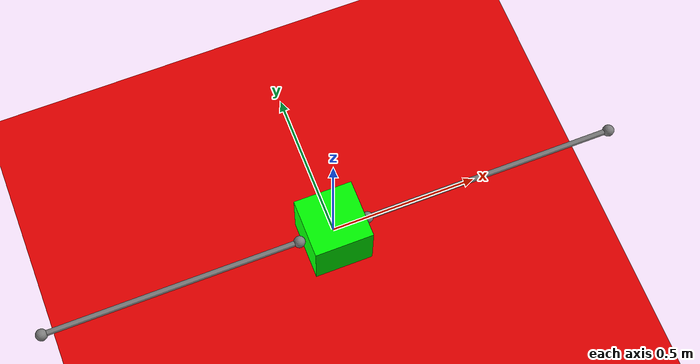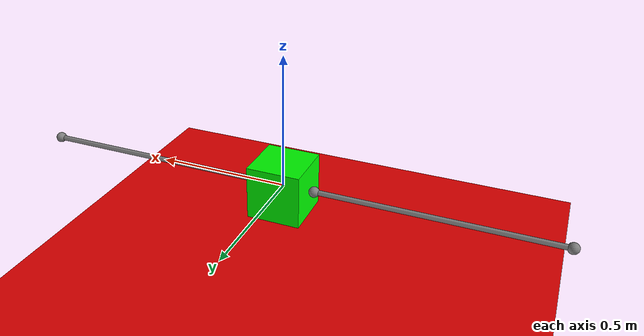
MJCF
<mujoco>
    <option timestep="0.0001" />
    <worldbody>
        <light diffuse=".5 .5 .5" pos="0 0 3" dir="0 0 -1"/>
        <geom type="plane" size="1 1 0.1" rgba=".9 0 0 1" pos="0 0 -0.4"/>
        <site name="world_s0" pos="1 0 0" size="0.02"/>
        <site name="world_s1" pos="-1 0 0" size="0.02"/>
        <body pos="0 0 0" euler="0 0 0">
            <joint name="joint0" type="slide" axis="1 0 0" pos="2 0 0" range="-2 2" damping="0"/>
            <geom  type="box" size="0.1 0.1 0.1" rgba="0 1 0 1" mass="1"/>
            <site name="cube_s0" pos="0.12 0 0" size="0.02"/>
            <site name="cube_s1" pos="-0.12 0 0" size="0.02"/>
        </body>
    </worldbody>

    <tendon>
        <spatial name="mTendon0" width="0.01">
            <site site="world_s0"/>
            <site site="cube_s0"/>
        </spatial>
        <spatial name="mTendon1" width="0.01">
            <site site="world_s1"/>
            <site site="cube_s1"/>
        </spatial>
    </tendon>

    <actuator>
        <motor name="motor" joint="joint0" ctrlrange="-100 100"/>
        <muscle  name="muscle0" tendon="mTendon0" range="0.75 1.0" scale="200"/>
        <muscle  name="muscle1" tendon="mTendon1" range="0.75 1.0" scale="200"/>
    </actuator>
</mujoco>
